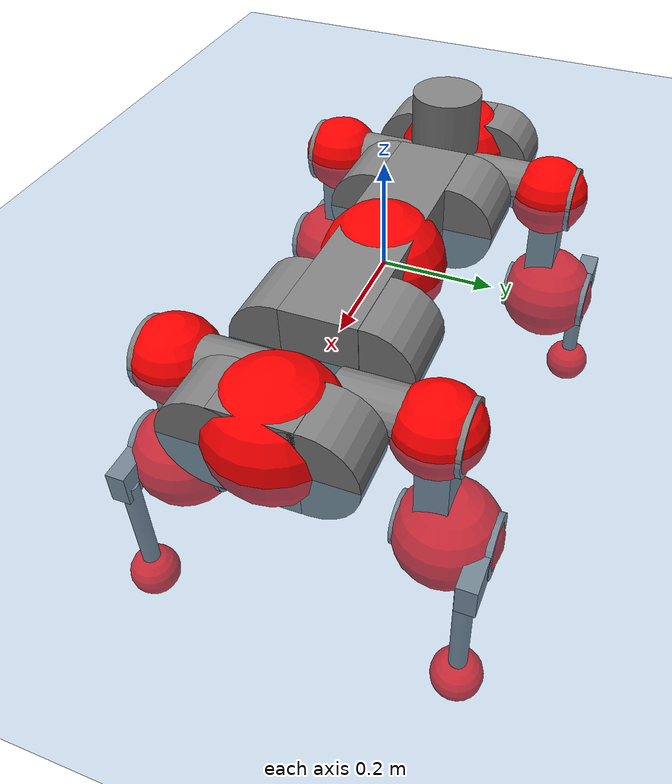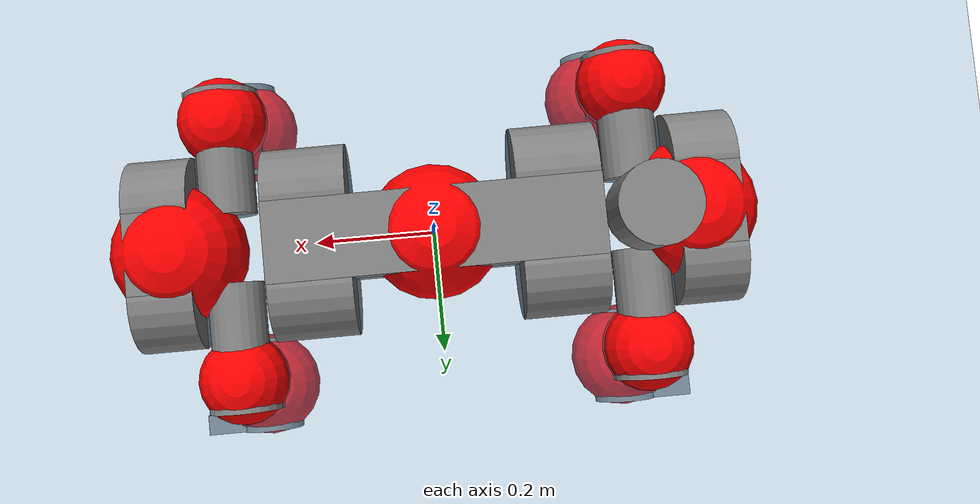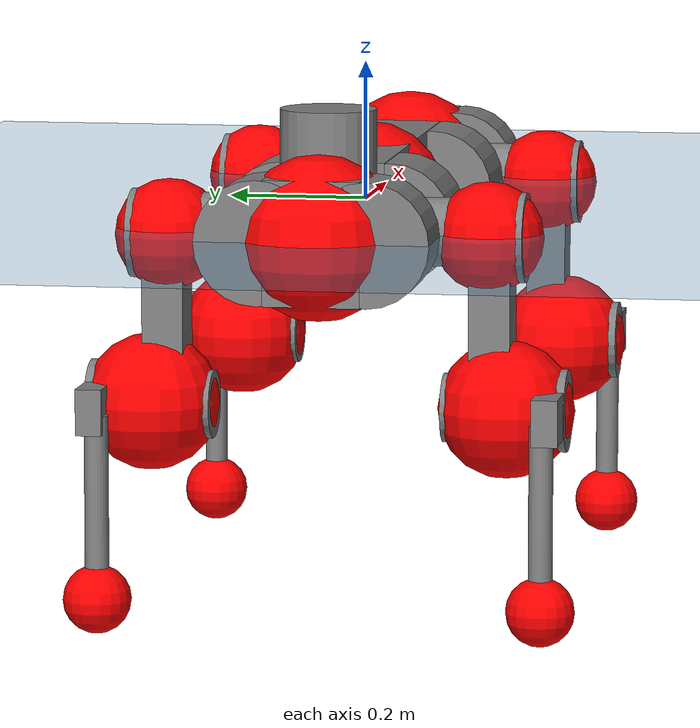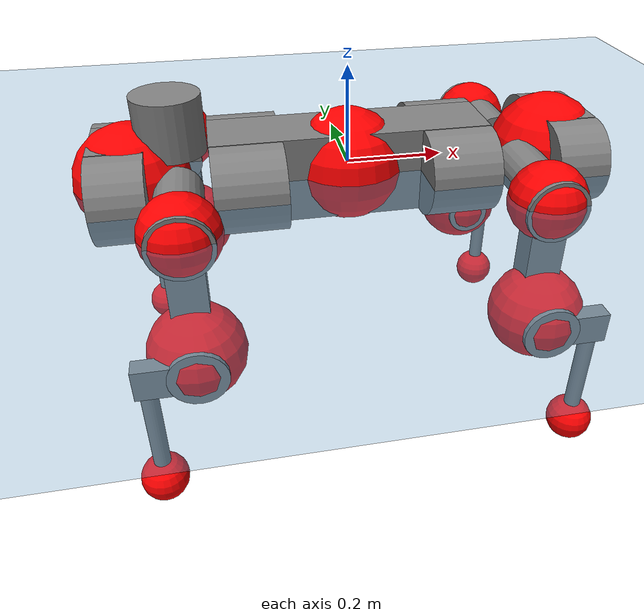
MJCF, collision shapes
<mujoco model="anymal_c">
  <compiler angle="radian" assetdir="assets" balanceinertia="true" inertiafromgeom="false"/>

  <option timestep="0.005" density="1.2" viscosity="2e-05"/>

  <size nkey="1"/>

  <visual>
    <quality shadowsize="8192"/>
    <map shadowclip="0.5"/>
  </visual>

  <default>
    <default class="/">
      <material specular="0" shininess="0.25"/>
      <geom contype="0" conaffinity="0" group="1" solref="-1000 -80"/>
      <site size="0.01 0.005 0.005" group="5"/>
      <general forcelimited="true" forcerange="-80 80" biastype="affine" gainprm="80" biasprm="0 -80 -2"/>
      <default class="anymal_c">
        <joint armature="0.01" damping="0.01" frictionloss="0.1"/>
        <default class="visual">
          <geom type="mesh" group="2"/>
          <default class="visual_zflip"/>
        </default>
        <default class="collision">
          <geom type="cylinder" group="3"/>
          <default class="foot">
            <geom size="0.03 0 0" type="sphere" condim="6" priority="1" friction="0.8 0.02 0.01" solimp="0.015 1 0.03"/>
          </default>
        </default>
      </default>
      <default class="reward_collision_sphere">
        <geom group="5" rgba="1 0 0 1"/>
      </default>
    </default>
  </default>

  <asset>
    <texture type="skybox" colorspace="auto" name="//unnamed_texture_0" builtin="gradient" rgb1="0.95 0.95 0.95" rgb2="0.95 0.95 0.95" width="100" height="600"/>
    <texture type="2d" colorspace="auto" name="texplane" builtin="checker" rgb1="0.345 0.575 0.748" rgb2="0.345 0.575 0.748" markrgb="1 1 1" width="512" height="512"/>
    <texture type="2d" colorspace="linear" name="base" file="base.png"/>
    <texture type="2d" colorspace="linear" name="top_shell" file="top_shell.png"/>
    <texture type="2d" colorspace="linear" name="bottom_shell" file="bottom_shell.png"/>
    <texture type="2d" colorspace="linear" name="remote" file="remote.png"/>
    <texture type="2d" colorspace="linear" name="hatch" file="hatch.png"/>
    <texture type="2d" colorspace="linear" name="handle" file="handle.png"/>
    <texture type="2d" colorspace="linear" name="face" file="face.png"/>
    <texture type="2d" colorspace="linear" name="battery" file="battery.png"/>
    <texture type="2d" colorspace="linear" name="lidar_cage" file="lidar_cage.png"/>
    <texture type="2d" colorspace="linear" name="depth_camera" file="depth_camera.png"/>
    <texture type="2d" colorspace="linear" name="wide_angle_camera" file="wide_angle_camera.png"/>
    <texture type="2d" colorspace="linear" name="lidar" file="lidar.png"/>
    <texture type="2d" colorspace="linear" name="drive" file="drive.png"/>
    <texture type="2d" colorspace="linear" name="hip_l" file="hip_l.png"/>
    <texture type="2d" colorspace="linear" name="shank_l" file="shank_l.png"/>
    <texture type="2d" colorspace="linear" name="foot" file="foot.png"/>
    <texture type="2d" colorspace="linear" name="thigh" file="thigh.png"/>
    <texture type="2d" colorspace="linear" name="shank_r" file="shank_r.png"/>
    <texture type="2d" colorspace="linear" name="hip_r" file="hip_r.png"/>
    <material name="MatPlane" class="/" texture="texplane" texuniform="true" texrepeat="2 2" specular="0.9" shininess="0.5"/>
    <material name="black_plastic" class="/" rgba="0.007 0.007 0.007 1"/>
    <material name="green" class="/" rgba="0.052 0.178 0.033 1"/>
    <material name="red" class="/" rgba="0.178 0.006 0.005 1"/>
    <material name="yellow" class="/" rgba="0.178 0.119 0.006 1"/>
    <material name="lwl" class="/" rgba="0.8 0.8 0.8 1"/>
    <material name="base" class="/" texture="base"/>
    <material name="top_shell" class="/" texture="top_shell"/>
    <material name="bottom_shell" class="/" texture="bottom_shell"/>
    <material name="hip_l" class="/" texture="hip_l"/>
    <material name="thigh" class="/" texture="thigh"/>
    <material name="shank_l" class="/" texture="shank_l"/>
    <material name="foot" class="/" texture="foot"/>
    <material name="hip_r" class="/" texture="hip_r"/>
    <material name="shank" class="/" texture="shank_r"/>
    <material name="hatch" class="/" texture="hatch"/>
    <material name="remote" class="/" texture="remote"/>
    <material name="handle" class="/" texture="handle"/>
    <material name="face" class="/" texture="face"/>
    <material name="depth_camera" class="/" texture="depth_camera"/>
    <material name="wide_angle_camera" class="/" texture="wide_angle_camera"/>
    <material name="battery" class="/" texture="battery"/>
    <material name="lidar_cage" class="/" texture="lidar_cage"/>
    <material name="lidar" class="/" texture="lidar"/>
    <material name="drive" class="/" texture="drive"/>
    <mesh name="base_0" class="/" file="base_0.obj"/>
    <mesh name="base_1" class="/" file="base_1.obj"/>
    <mesh name="base_2" class="/" file="base_2.obj"/>
    <mesh name="base_3" class="/" file="base_3.obj"/>
    <mesh name="base_4" class="/" file="base_4.obj"/>
    <mesh name="base_5" class="/" file="base_5.obj"/>
    <mesh name="top_shell" class="/" file="top_shell.obj"/>
    <mesh name="bottom_shell" class="/" file="bottom_shell.obj"/>
    <mesh name="remote" class="/" file="remote.obj"/>
    <mesh name="handle" class="/" file="handle.obj"/>
    <mesh name="face" class="/" file="face.obj"/>
    <mesh name="wide_angle_camera" class="/" file="wide_angle_camera.obj"/>
    <mesh name="depth_camera" class="/" file="depth_camera.obj"/>
    <mesh name="battery" class="/" file="battery.obj"/>
    <mesh name="lidar_cage" class="/" file="lidar_cage.obj"/>
    <mesh name="lidar" class="/" file="lidar.obj"/>
    <mesh name="drive" class="/" file="drive.obj"/>
    <mesh name="hip_l" class="/" file="hip_l.obj"/>
    <mesh name="thigh" class="/" file="thigh.obj"/>
    <mesh name="shank_l" class="/" file="shank_l.obj"/>
    <mesh name="foot" class="/" file="foot.obj"/>
    <mesh name="hip_r" class="/" file="hip_r.obj"/>
    <mesh name="hatch" class="/" file="hatch.obj"/>
    <mesh name="shank_r" class="/" file="shank_r.obj"/>
  </asset>

  <worldbody>
    <geom name="floor" class="/" size="100 100 0.125" type="plane" group="0" material="MatPlane"/>
    <light name="toplight_shadow" class="/" pos="0 0 5" dir="0.0990148 0.0990148 -0.990148" type="directional" ambient="0.04 0.04 0.04" diffuse="0.55 0.55 0.55" specular="0.12 0.12 0.12"/>
    <light name="toplight_fill" class="/" pos="0 0 5" dir="0.0990148 0.0990148 -0.990148" type="directional" castshadow="false" ambient="0.04 0.04 0.04" diffuse="0.3 0.3 0.3" specular="0.08 0.08 0.08"/>
    <body name="trunk" childclass="anymal_c" pos="-0.000471007 -0.00254574 -0.00239209" quat="1 0.00083478 -0.000224237 0.000462591">
      <inertial pos="0.0024401 0.000645782 0.0417964" quat="0.504078 0.49088 0.50615 0.498752" mass="17.7672" diaginertia="0.520615 0.953747 0.0963817"/>
      <joint name="//unnamed_joint_0" type="free" armature="0" damping="0" frictionloss="0"/>
      <geom name="//unnamed_geom_1" class="visual" material="green" mesh="base_0"/>
      <geom name="//unnamed_geom_2" class="visual" material="yellow" mesh="base_1"/>
      <geom name="//unnamed_geom_3" class="visual" material="red" mesh="base_2"/>
      <geom name="//unnamed_geom_4" class="visual" material="black_plastic" mesh="base_3"/>
      <geom name="//unnamed_geom_5" class="visual" material="lwl" mesh="base_4"/>
      <geom name="//unnamed_geom_6" class="visual" material="base" mesh="base_5"/>
      <geom name="trunk_1" class="collision" size="0.279726 0.0675202 0.0868117" type="box"/>
      <geom name="trunk_2" class="collision" size="0.0868117 0.0699316" pos="0.208992 0.0761738 0" quat="0.707107 0 0.707107 0"/>
      <geom name="trunk_3" class="collision" size="0.0868117 0.0699316" pos="-0.208992 0.0761738 0" quat="0.707107 0 0.707107 0"/>
      <geom name="trunk_4" class="collision" size="0.0868117 0.0699316" pos="0.208992 -0.0761738 0" quat="0.707107 0 0.707107 0"/>
      <geom name="trunk_5" class="collision" size="0.0868117 0.0699316" pos="-0.208992 -0.0761738 0" quat="0.707107 0 0.707107 0"/>
      <geom name="//unnamed_geom_12" class="visual" material="top_shell" mesh="top_shell"/>
      <geom name="//unnamed_geom_13" class="visual" material="bottom_shell" mesh="bottom_shell"/>
      <geom name="//unnamed_geom_14" class="visual" material="remote" mesh="remote"/>
      <geom name="//unnamed_geom_15" class="visual" material="handle" mesh="handle"/>
      <geom name="//unnamed_geom_16" class="visual" pos="0.398286 0 0" quat="1 0 0 0" material="face" mesh="face"/>
      <geom name="trunk_6" class="collision" size="0.0530516 0.0675202 0.0868117" pos="0.451134 0 0" type="box"/>
      <geom name="//unnamed_geom_18" class="collision" size="0.0868117 0.0530516" pos="0.451134 0.0761738 0" quat="0.707107 0 0.707107 0"/>
      <geom name="//unnamed_geom_19" class="collision" size="0.0868117 0.0530516" pos="0.451134 -0.0761738 0" quat="0.707107 0 0.707107 0"/>
      <geom name="//unnamed_geom_20" class="visual" pos="0.443586 0 -0.0237801" quat="0.965926 0 0.258819 0" material="depth_camera" mesh="depth_camera"/>
      <geom name="//unnamed_geom_21" class="visual" pos="0.492933 0 0.0126443" material="wide_angle_camera" mesh="wide_angle_camera"/>
      <geom name="//unnamed_geom_22" class="visual_zflip" pos="-0.398286 0 0" quat="0 0 0 1" material="face" mesh="face"/>
      <geom name="trunk_7" class="collision" size="0.0530516 0.0675202 0.0868117" pos="-0.451134 0 0" quat="0 0 0 1" type="box"/>
      <geom name="//unnamed_geom_24" class="collision" size="0.0868117 0.0530516" pos="-0.451134 -0.0761738 0" quat="0 -0.707107 0 0.707107"/>
      <geom name="//unnamed_geom_25" class="collision" size="0.0868117 0.0530516" pos="-0.451134 0.0761738 0" quat="0 -0.707107 0 0.707107"/>
      <geom name="//unnamed_geom_26" class="visual" pos="-0.443586 0 -0.0237801" quat="0 -0.258819 0 0.965926" material="depth_camera" mesh="depth_camera"/>
      <geom name="//unnamed_geom_27" class="visual_zflip" pos="-0.492933 0 0.0126443" quat="0 0 0 1" material="wide_angle_camera" mesh="wide_angle_camera"/>
      <geom name="//unnamed_geom_28" class="visual" material="battery" mesh="battery"/>
      <geom name="//unnamed_geom_29" class="visual" pos="0 0.0848694 0.0254203" quat="0.683013 -0.183013 0.183013 0.683013" material="depth_camera" mesh="depth_camera"/>
      <geom name="//unnamed_geom_30" class="visual" pos="0 -0.0848694 0.0254203" quat="0.683013 0.183013 0.183013 -0.683013" material="depth_camera" mesh="depth_camera"/>
      <geom name="//unnamed_geom_31" class="visual" pos="-0.349761 0 0.0620812" quat="1 0 0 0" material="lidar_cage" mesh="lidar_cage"/>
      <geom name="trunk_8" class="collision" size="0.0675202 0.0578744" pos="-0.349761 0 0.11276"/>
      <geom name="//unnamed_geom_33" class="visual" pos="-0.349761 5.00188e-05 0.120108" quat="0.707107 0 0 -0.707107" material="lidar" mesh="lidar"/>
      <geom name="//unnamed_geom_34" class="visual" pos="0.288169 0.113086 4.20135e-09" quat="0.258819 0.965926 0 0" material="drive" mesh="drive"/>
      <geom name="//unnamed_geom_35" class="visual" pos="0.288169 -0.113086 -4.20135e-09" quat="0.258819 -0.965926 0 0" material="drive" mesh="drive"/>
      <geom name="//unnamed_geom_36" class="visual" pos="-0.288169 0.113086 -4.20135e-09" quat="0 0 0.965926 -0.258819" material="drive" mesh="drive"/>
      <geom name="//unnamed_geom_37" class="visual" pos="-0.288169 -0.113086 4.20135e-09" quat="0 0 -0.965926 -0.258819" material="drive" mesh="drive"/>
      <geom name="//unnamed_geom_38" class="visual" pos="0.111462 0 0.0616589" quat="1 0 0 0" material="hatch" mesh="hatch"/>
      <geom name="//unnamed_geom_39" class="reward_collision_sphere" size="0.115749"/>
      <geom name="//unnamed_geom_40" class="reward_collision_sphere" size="0.115749" pos="0.432397 0 0"/>
      <geom name="//unnamed_geom_41" class="reward_collision_sphere" size="0.115749" pos="-0.432397 0 0"/>
      <site name="imu" pos="0.235214 0.0202174 0.0317596" size="0.00964574"/>
      <camera name="track" pos="0 -2.17639 0" quat="0.707107 0.707107 0 0" mode="trackcom"/>
      <camera name="ego_camera" pos="0.432397 0 -0.0337857" quat="-0.5 -0.5 0.5 0.5"/>
      <body name="LF_HIP" pos="0.285999 0.110866 0.00271014" quat="0.258848 0.965918 4.88046e-05 -9.49502e-05">
        <inertial pos="0.0546007 -0.0191116 -0.00962082" quat="-0.123726 0.708443 -0.136673 0.681265" mass="2.55228" diaginertia="0.0048833 0.00755979 0.00149124"/>
        <joint name="LF_HAA" pos="0 0 0" axis="0.999984 -0.00562509 -0.000146812" range="-0.698952 0.45946" armature="0.0107284" damping="0" frictionloss="0.108648"/>
        <geom name="//unnamed_geom_42" class="visual" pos="0 0.000247146 -4.05936e-05" quat="0.258819 -0.965926 0 0" material="hip_l" mesh="hip_l"/>
        <geom name="//unnamed_geom_43" class="visual" pos="0.0575568 -0.0713321 -0.0393822" quat="0.183013 -0.683013 0.683013 0.183013" material="drive" mesh="drive"/>
        <geom name="//unnamed_geom_44" class="collision" size="0.0482287 0.0675202" pos="0.0575568 -0.0130146 -0.00583226" quat="-0.353553 -0.612372 0.612372 -0.353553"/>
        <body name="LF_THIGH" pos="0.0565255 -0.0793443 -0.0336155" quat="0.183383 -0.682709 0.683293 0.182728">
          <inertial pos="0.0301607 -0.000641114 -0.206234" quat="0.992729 -0.00753704 -0.0848361 0.0850609" mass="2.72311" diaginertia="0.0251314 0.0465953 0.00175272"/>
          <joint name="LF_HFE" pos="0 0 0" axis="0.999914 0.0100931 0.00841681" range="-3.18036 3.1838" armature="0.0107621" damping="0.00535236" frictionloss="0.109824"/>
          <geom name="//unnamed_geom_45" class="visual" pos="-0.00253307 -3.99153e-06 0" quat="0.707107 0 0 -0.707107" material="thigh" mesh="thigh"/>
          <geom name="//unnamed_geom_46" class="collision" size="0.0626973 0.038583" pos="0.0384353 0 0" quat="0.5 0.5 -0.5 -0.5"/>
          <geom name="//unnamed_geom_47" class="collision" size="0.0361715 0.0289372 0.136308" pos="0.0288265 0 -0.11936" quat="0.707107 0 0 -0.707107" type="box"/>
          <geom name="//unnamed_geom_48" class="visual" pos="0.0963765 0 -0.240723" quat="1 0 0 0" material="drive" mesh="drive"/>
          <geom name="//unnamed_geom_49" class="collision" size="0.0482287 0.0675202" pos="0.0291147 0 -0.240723" quat="0.707107 0 0.707107 0"/>
          <geom name="//unnamed_geom_50" class="reward_collision_sphere" size="0.0771659" pos="0.0240221 0 0"/>
          <body name="LF_SHANK" pos="0.0980718 -0.000445858 -0.241504" quat="0.999999 0.000825933 -0.000660094 0.000766644">
            <inertial pos="0.00802159 -0.0638394 -0.0704906" quat="0.99239 -0.121229 0.00100964 -0.021555" mass="0.539501" diaginertia="0.00813923 0.0146177 0.000466099"/>
            <joint name="LF_KFE" pos="0 0 0" axis="0.99997 0.00660054 -0.00404312" range="-3.12208 3.10509" armature="0.0081631" damping="0.0109858" frictionloss="0.0977414"/>
            <geom name="//unnamed_geom_51" class="visual" pos="-0.00082598 -0.00440417 0" quat="0.707107 0 0 -0.707107" material="shank_l" mesh="shank_l"/>
            <geom name="LF_kfe_act" class="collision" size="0.0578744 0.0192915" pos="0.0192176 0 0" quat="0.5 0.5 -0.5 -0.5"/>
            <geom name="//unnamed_geom_53" class="collision" size="0.055462 0.0325544 0.0183269" pos="0.0192176 -0.0625703 0" quat="0.5 0.5 -0.5 -0.5" type="box"/>
            <geom name="//unnamed_geom_54" class="visual" pos="0.0125397 -0.0971262 -0.285464" quat="0.382683 0 0 -0.92388" material="foot" mesh="foot"/>
            <geom name="LF_calf" class="collision" size="0.01688 0.136248" pos="0.0125395 -0.095707 -0.142732" quat="0.707107 0 0 -0.707107"/>
            <geom name="LF_foot" class="foot" size="0.0343711" pos="0.0125395 -0.095707 -0.266459" quat="0.707107 0 0 -0.707107"/>
            <geom name="//unnamed_geom_57" class="reward_collision_sphere" size="0.0964574" pos="-0.0480441 0 0"/>
            <geom name="//unnamed_geom_58" class="reward_collision_sphere" size="0.0482287" pos="0.0125395 -0.095707 -0.266459"/>
            <site name="LF_foot" class="foot" pos="0.0125395 -0.095707 -0.266459" quat="0.707107 0 0 -0.707107" size="0.00964574"/>
          </body>
        </body>
      </body>
      <body name="RF_HIP" pos="0.288614 -0.112241 0.000566763" quat="0.259726 -0.965682 -0.000889765 2.19813e-05">
        <inertial pos="0.0565974 0.0188634 -0.00672839" quat="0.138144 0.681498 0.12613 0.707508" mass="2.54418" diaginertia="0.00495668 0.00767112 0.00140991"/>
        <joint name="RF_HAA" pos="0 0 0" axis="0.999992 0.00212558 -0.00325581" range="-0.436678 0.710874" armature="0.0096099" damping="0.0102176" frictionloss="0.0980961"/>
        <geom name="//unnamed_geom_59" class="visual" pos="0 -0.000247144 -4.05935e-05" quat="0.258819 0.965926 0 0" material="hip_r" mesh="hip_r"/>
        <geom name="//unnamed_geom_60" class="visual" pos="0.0575568 0.0713321 -0.0393822" quat="0.183013 0.683013 0.683013 -0.183013" material="drive" mesh="drive"/>
        <geom name="//unnamed_geom_61" class="collision" size="0.0482287 0.0675202" pos="0.0575568 0.0130146 -0.00583226" quat="-0.353553 0.612372 0.612372 0.353553"/>
        <body name="RF_THIGH" pos="0.0573598 0.0781522 -0.0343459" quat="0.182702 0.682963 0.683196 -0.182824">
          <inertial pos="0.0272124 -7.4518e-05 -0.208821" quat="0.992648 -0.00493683 -0.0807694 0.0900149" mass="2.68747" diaginertia="0.0241258 0.0429036 0.00170485"/>
          <joint name="RF_HFE" pos="0 0 0" axis="0.999961 -0.00489626 0.00734913" stiffness="0.00299287" range="-3.17887 3.0954" armature="0.00946457" damping="0.0121053" frictionloss="0.108803"/>
          <geom name="//unnamed_geom_62" class="visual" pos="-0.00253307 -3.99153e-06 0" quat="0.707107 0 0 -0.707107" material="thigh" mesh="thigh"/>
          <geom name="//unnamed_geom_63" class="collision" size="0.0626973 0.038583" pos="0.0384353 0 0" quat="0.5 0.5 0.5 0.5"/>
          <geom name="//unnamed_geom_64" class="collision" size="0.0361715 0.0289372 0.136308" pos="0.0288265 0 -0.11936" quat="0.707107 0 0 0.707107" type="box"/>
          <geom name="//unnamed_geom_65" class="visual" pos="0.0963765 0 -0.240723" quat="1 0 0 0" material="drive" mesh="drive"/>
          <geom name="//unnamed_geom_66" class="collision" size="0.0482287 0.0675202" pos="0.0291147 0 -0.240723" quat="0.707107 0 0.707107 0"/>
          <geom name="//unnamed_geom_67" class="reward_collision_sphere" size="0.0771659" pos="0.0240221 0 0"/>
          <body name="RF_SHANK" pos="0.0993332 4.26162e-05 -0.241255" quat="1 0.000137933 -0.000125931 0.00027363">
            <inertial pos="0.00828703 0.0664574 -0.0694035" quat="0.992845 0.116797 -0.000475667 0.024856" mass="0.549819" diaginertia="0.00869393 0.0139834 0.000486366"/>
            <joint name="RF_KFE" pos="0 0 0" axis="0.999969 0.00772131 -0.00150187" range="-3.14816 3.14807" armature="0.00915597" damping="0.0230082" frictionloss="0.102412"/>
            <geom name="//unnamed_geom_68" class="visual" pos="-0.000825975 0.00440416 0" quat="0.707107 0 0 0.707107" material="shank" mesh="shank_r"/>
            <geom name="RF_kfe_act" class="collision" size="0.0578744 0.0192915" pos="0.0192176 0 0" quat="0.5 0.5 0.5 0.5"/>
            <geom name="//unnamed_geom_70" class="collision" size="0.055462 0.0325544 0.0183269" pos="0.0192176 0.0625703 0" quat="0.5 0.5 0.5 0.5" type="box"/>
            <geom name="//unnamed_geom_71" class="visual" pos="0.0125393 0.0971262 -0.285464" quat="0.382683 0 0 0.92388" material="foot" mesh="foot"/>
            <geom name="RF_calf" class="collision" size="0.01688 0.136248" pos="0.0125395 0.095707 -0.142732" quat="0.707107 0 0 0.707107"/>
            <geom name="RF_foot" class="foot" size="0.0274902" pos="0.0125395 0.095707 -0.266459" quat="0.707107 0 0 0.707107"/>
            <geom name="//unnamed_geom_74" class="reward_collision_sphere" size="0.0964574" pos="-0.0480441 0 0"/>
            <geom name="//unnamed_geom_75" class="reward_collision_sphere" size="0.0482287" pos="0.0125395 0.095707 -0.266459"/>
            <site name="RF_foot" class="foot" pos="0.0125395 0.095707 -0.266459" quat="0.707107 0 0 0.707107" size="0.00964574"/>
          </body>
        </body>
      </body>
      <body name="LH_HIP" pos="-0.28741 0.114435 0.00292416" quat="0.000270889 6.03721e-05 0.965849 -0.259106">
        <inertial pos="0.0549731 0.0155134 -0.0078741" quat="0.135954 0.678493 0.127957 0.710487" mass="2.492" diaginertia="0.00475033 0.00763681 0.00137411"/>
        <joint name="LH_HAA" pos="0 0 0" axis="1 0.000133306 -0.000573489" stiffness="0.00920583" range="-0.5039 0.717885" armature="0.00985065" damping="0.00833958" frictionloss="0.107853"/>
        <geom name="//unnamed_geom_76" class="visual" pos="0 -0.000247144 -4.05935e-05" quat="-0.258819 -0.965926 0 0" material="hip_r" mesh="hip_r"/>
        <geom name="//unnamed_geom_77" class="visual" pos="0.0575568 0.0713321 -0.0393822" quat="0.183013 0.683013 0.683013 -0.183013" material="drive" mesh="drive"/>
        <geom name="//unnamed_geom_78" class="collision" size="0.0482287 0.0675202" pos="0.0575568 0.0130146 -0.00583226" quat="-0.353553 0.612372 0.612372 0.353553"/>
        <body name="LH_THIGH" pos="0.0564013 0.0818145 -0.0332181" quat="0.182782 0.682968 0.683059 -0.183234">
          <inertial pos="0.0300872 -0.000400125 -0.207524" quat="0.992685 -0.0120612 -0.0823432 0.0874733" mass="2.69008" diaginertia="0.0252218 0.0443125 0.00184054"/>
          <joint name="LH_HFE" pos="0 0 0" axis="0.99994 -0.0080588 -0.00737658" range="-3.14087 3.14506" armature="0.00849268" damping="0.004978" frictionloss="0.0861622"/>
          <geom name="//unnamed_geom_79" class="visual" pos="-0.00253307 -3.99153e-06 0" quat="0.707107 0 0 -0.707107" material="thigh" mesh="thigh"/>
          <geom name="//unnamed_geom_80" class="collision" size="0.0626973 0.038583" pos="0.0384353 0 0" quat="0.5 0.5 -0.5 -0.5"/>
          <geom name="//unnamed_geom_81" class="collision" size="0.0361715 0.0289372 0.136308" pos="0.0288265 0 -0.11936" quat="0.707107 0 0 -0.707107" type="box"/>
          <geom name="//unnamed_geom_82" class="visual" pos="0.0963765 0 -0.240723" quat="1 0 0 0" material="drive" mesh="drive"/>
          <geom name="//unnamed_geom_83" class="collision" size="0.0482287 0.0675202" pos="0.0291147 0 -0.240723" quat="0.707107 0 0.707107 0"/>
          <geom name="//unnamed_geom_84" class="reward_collision_sphere" size="0.0771659" pos="0.0240221 0 0"/>
          <body name="LH_SHANK" pos="0.0986146 -0.000886499 -0.238661" quat="1 1.61805e-06 -1.05102e-05 4.77206e-06">
            <inertial pos="0.00501487 0.0662955 -0.0652601" quat="0.993011 0.1153 -0.00241707 0.0251035" mass="0.532451" diaginertia="0.0083004 0.0139743 0.000488486"/>
            <joint name="LH_KFE" pos="0 0 0" axis="0.999989 0.00463793 0.000601101" range="-3.17374 3.13705" armature="0.00851734" damping="0.0046038" frictionloss="0.0999486"/>
            <geom name="//unnamed_geom_85" class="visual" pos="-0.000825975 0.00440416 0" quat="-0.707107 0 0 -0.707107" material="shank" mesh="shank_r"/>
            <geom name="LH_kfe_act" class="collision" size="0.0578744 0.0192915" pos="0.0192176 0 0" quat="0.5 0.5 -0.5 -0.5"/>
            <geom name="//unnamed_geom_87" class="collision" size="0.055462 0.0325544 0.0183269" pos="0.0192176 0.0625703 0" quat="0.5 0.5 -0.5 -0.5" type="box"/>
            <geom name="//unnamed_geom_88" class="visual" pos="0.0125393 0.0971262 -0.285464" quat="-0.382683 0 0 -0.92388" material="foot" mesh="foot"/>
            <geom name="LH_calf" class="collision" size="0.01688 0.136248" pos="0.0125395 0.095707 -0.142732" quat="0.707107 0 0 -0.707107"/>
            <geom name="LH_foot" class="foot" size="0.0323586" pos="0.0125395 0.095707 -0.266459" quat="0.707107 0 0 -0.707107"/>
            <geom name="//unnamed_geom_91" class="reward_collision_sphere" size="0.0964574" pos="-0.0480441 0 0"/>
            <geom name="//unnamed_geom_92" class="reward_collision_sphere" size="0.0482287" pos="0.0125395 0.095707 -0.266459"/>
            <site name="LH_foot" class="foot" pos="0.0125395 0.095707 -0.266459" quat="0.707107 0 0 -0.707107" size="0.00964574"/>
          </body>
        </body>
      </body>
      <body name="RH_HIP" pos="-0.286299 -0.113311 0.00197589" quat="0.00106577 0.000461677 -0.966162 -0.257932">
        <inertial pos="0.0544284 -0.0146333 -0.00699929" quat="-0.122594 0.70974 -0.1364 0.680173" mass="2.50408" diaginertia="0.00499855 0.00781332 0.0013805"/>
        <joint name="RH_HAA" pos="0 0 0" axis="0.999999 0.000775413 -0.000641348" range="-0.722992 0.490564" armature="0.00997502" damping="0.0067509" frictionloss="0.0892146"/>
        <geom name="//unnamed_geom_93" class="visual" pos="0 0.000247146 -4.05936e-05" quat="-0.258819 0.965926 0 0" material="hip_l" mesh="hip_l"/>
        <geom name="//unnamed_geom_94" class="visual" pos="0.0575568 -0.0713321 -0.0393822" quat="-0.183013 0.683013 -0.683013 -0.183013" material="drive" mesh="drive"/>
        <geom name="//unnamed_geom_95" class="collision" size="0.0482287 0.0675202" pos="0.0575568 -0.0130146 -0.00583226" quat="0.353553 0.612372 -0.612372 0.353553"/>
        <body name="RH_THIGH" pos="0.0559657 -0.0788299 -0.0368695" quat="-0.183063 0.68404 -0.682094 -0.182549">
          <inertial pos="0.0300904 -0.00286948 -0.208349" quat="0.993257 -0.00423823 -0.0813507 0.0824904" mass="2.58501" diaginertia="0.0233102 0.0441466 0.00172286"/>
          <joint name="RH_HFE" pos="0 0 0" axis="0.99998 -0.00417534 -0.00482301" range="-3.16219 3.19835" armature="0.0109436" damping="0.00452585" frictionloss="0.0898741"/>
          <geom name="//unnamed_geom_96" class="visual" pos="-0.00253307 -3.99153e-06 0" quat="0.707107 0 0 -0.707107" material="thigh" mesh="thigh"/>
          <geom name="//unnamed_geom_97" class="collision" size="0.0626973 0.038583" pos="0.0384353 0 0" quat="0.5 0.5 0.5 0.5"/>
          <geom name="//unnamed_geom_98" class="collision" size="0.0361715 0.0289372 0.136308" pos="0.0288265 0 -0.11936" quat="0.707107 0 0 0.707107" type="box"/>
          <geom name="//unnamed_geom_99" class="visual" pos="0.0963765 0 -0.240723" quat="1 0 0 0" material="drive" mesh="drive"/>
          <geom name="//unnamed_geom_100" class="collision" size="0.0482287 0.0675202" pos="0.0291147 0 -0.240723" quat="0.707107 0 0.707107 0"/>
          <geom name="//unnamed_geom_101" class="reward_collision_sphere" size="0.0771659" pos="0.0240221 0 0"/>
          <body name="RH_SHANK" pos="0.0968263 0.00278008 -0.241576" quat="1 -0.000105071 8.99468e-06 -0.000147646">
            <inertial pos="0.00485152 -0.0666461 -0.0654047" quat="0.992525 -0.121055 0.00253736 -0.0152805" mass="0.525639" diaginertia="0.00859354 0.0136283 0.000495729"/>
            <joint name="RH_KFE" pos="0 0 0" axis="0.999923 -0.0104695 -0.00658729" stiffness="0.0012869" range="-3.08462 3.12603" armature="0.00848944" damping="0.00763972" frictionloss="0.103731"/>
            <geom name="//unnamed_geom_102" class="visual" pos="-0.00082598 -0.00440417 0" quat="0.707107 0 0 -0.707107" material="shank_l" mesh="shank_l"/>
            <geom name="RH_kfe_act" class="collision" size="0.0578744 0.0192915" pos="0.0192176 0 0" quat="0.5 0.5 0.5 0.5"/>
            <geom name="//unnamed_geom_104" class="collision" size="0.055462 0.0325544 0.0183269" pos="0.0192176 -0.0625703 0" quat="0.5 0.5 0.5 0.5" type="box"/>
            <geom name="//unnamed_geom_105" class="visual" pos="0.0125397 -0.0971262 -0.285464" quat="0.382683 0 0 -0.92388" material="foot" mesh="foot"/>
            <geom name="RH_calf" class="collision" size="0.01688 0.136248" pos="0.0125395 -0.095707 -0.142732" quat="0.707107 0 0 0.707107"/>
            <geom name="RH_foot" class="foot" size="0.024471" pos="0.0125395 -0.095707 -0.266459" quat="0.707107 0 0 0.707107"/>
            <geom name="//unnamed_geom_108" class="reward_collision_sphere" size="0.0964574" pos="-0.0480441 0 0"/>
            <geom name="//unnamed_geom_109" class="reward_collision_sphere" size="0.0482287" pos="0.0125395 -0.095707 -0.266459"/>
            <site name="RH_foot" class="foot" pos="0.0125395 -0.095707 -0.266459" quat="0.707107 0 0 0.707107" size="0.00964574"/>
          </body>
        </body>
      </body>
    </body>
  </worldbody>

  <contact>
    <pair class="/" geom1="floor" geom2="LF_foot" name="//unnamed_contact_0"/>
    <pair class="/" geom1="floor" geom2="RF_foot" name="//unnamed_contact_1"/>
    <pair class="/" geom1="floor" geom2="LH_foot" name="//unnamed_contact_2"/>
    <pair class="/" geom1="floor" geom2="RH_foot" name="//unnamed_contact_3"/>
  </contact>

  <actuator>
    <general name="LF_HAA" class="/" joint="LF_HAA" forcerange="-79.1019 79.1019" gainprm="77.8935" biasprm="0 -77.8935 -2.02181"/>
    <general name="LF_HFE" class="/" joint="LF_HFE" forcerange="-69.2919 69.2919" gainprm="77.8935" biasprm="0 -77.8935 -2.02181"/>
    <general name="LF_KFE" class="/" joint="LF_KFE" forcerange="-78.3166 78.3166" gainprm="77.8935" biasprm="0 -77.8935 -2.02181"/>
    <general name="RF_HAA" class="/" joint="RF_HAA" forcerange="-76.6028 76.6028" gainprm="77.8935" biasprm="0 -77.8935 -2.02181"/>
    <general name="RF_HFE" class="/" joint="RF_HFE" forcerange="-79.1918 79.1918" gainprm="77.8935" biasprm="0 -77.8935 -2.02181"/>
    <general name="RF_KFE" class="/" joint="RF_KFE" forcerange="-70.4389 70.4389" gainprm="77.8935" biasprm="0 -77.8935 -2.02181"/>
    <general name="LH_HAA" class="/" joint="LH_HAA" forcerange="-79.7915 79.7915" gainprm="77.8935" biasprm="0 -77.8935 -2.02181"/>
    <general name="LH_HFE" class="/" joint="LH_HFE" forcerange="-79.5674 79.5674" gainprm="77.8935" biasprm="0 -77.8935 -2.02181"/>
    <general name="LH_KFE" class="/" joint="LH_KFE" forcerange="-74.7839 74.7839" gainprm="77.8935" biasprm="0 -77.8935 -2.02181"/>
    <general name="RH_HAA" class="/" joint="RH_HAA" forcerange="-77.0133 77.0133" gainprm="77.8935" biasprm="0 -77.8935 -2.02181"/>
    <general name="RH_HFE" class="/" joint="RH_HFE" forcerange="-72.7119 72.7119" gainprm="77.8935" biasprm="0 -77.8935 -2.02181"/>
    <general name="RH_KFE" class="/" joint="RH_KFE" forcerange="-80.3549 80.3549" gainprm="77.8935" biasprm="0 -77.8935 -2.02181"/>
  </actuator>

  <sensor>
    <gyro site="imu" name="imu_angular_velocity"/>
    <velocimeter site="imu" name="imu_linear_velocity"/>
    <framelinvel objtype="site" objname="LF_foot" name="LF_foot_global_linear_velocity"/>
    <framelinvel objtype="site" objname="RF_foot" name="RF_foot_global_linear_velocity"/>
    <framelinvel objtype="site" objname="LH_foot" name="LH_foot_global_linear_velocity"/>
    <framelinvel objtype="site" objname="RH_foot" name="RH_foot_global_linear_velocity"/>
  </sensor>

  <keyframe>
    <key name="home" qpos="0 0 0.55 1 0 0 0 0 0.4 -0.8 0 -0.4 0.8 0 -0.4 0.8 0 0.4 -0.8"/>
  </keyframe>
</mujoco>
